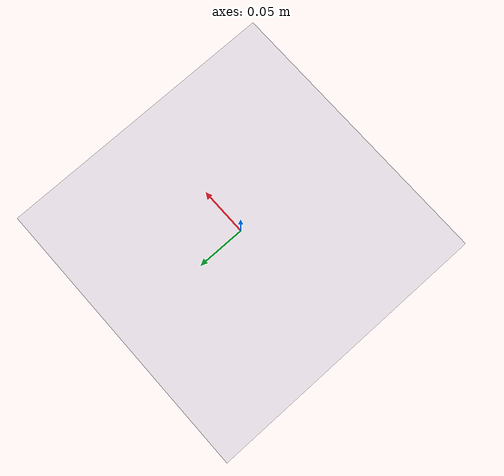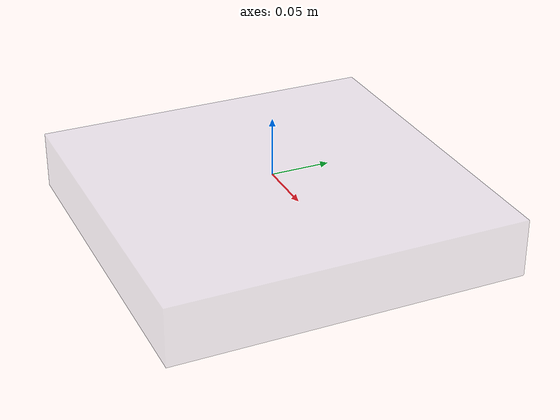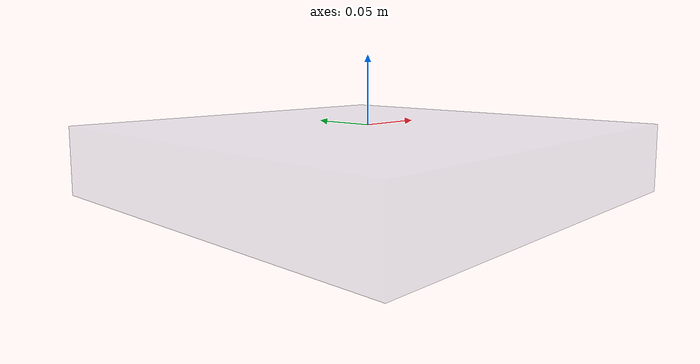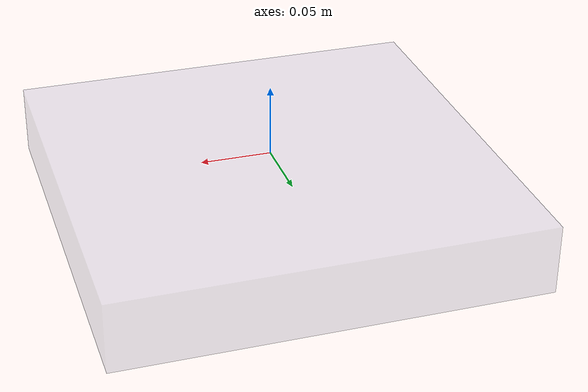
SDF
<?xml version="1.0"?>
<sdf version="1.7">
  <model name="Floor">
    <link name="Floor">
      <pose>0 0 0 0 0 0</pose>
      <inertial>
        <pose>0 0 0 0 0 0</pose>
        <mass>0.1</mass>
        <inertia>
          <ixx>0.000770833</ixx>
          <ixy>0</ixy>
          <ixz>0</ixz>
          <iyy>0.000770833</iyy>
          <iyz>0</iyz>
          <izz>0.0015</izz>
        </inertia>
      </inertial>
      <visual name="visual">
        <pose>0 0 -2.5e-2 0 0 0</pose>
        <geometry>
          <box>
            <size>3.0e-1 3.0e-1 5.0e-2</size>
          </box>
        </geometry>
        <material>
          <diffuse>0.5 0.5 0.7 0.2</diffuse>
        </material>
      </visual>
      <collision name="collision">
        <pose>0 0 -2.5e-2 0 0 0</pose>
        <geometry>
          <box>
            <size>3.0e-1 3.0e-1 5.0e-2</size>
          </box>
        </geometry>
      </collision>
    </link>
  </model>
</sdf>
